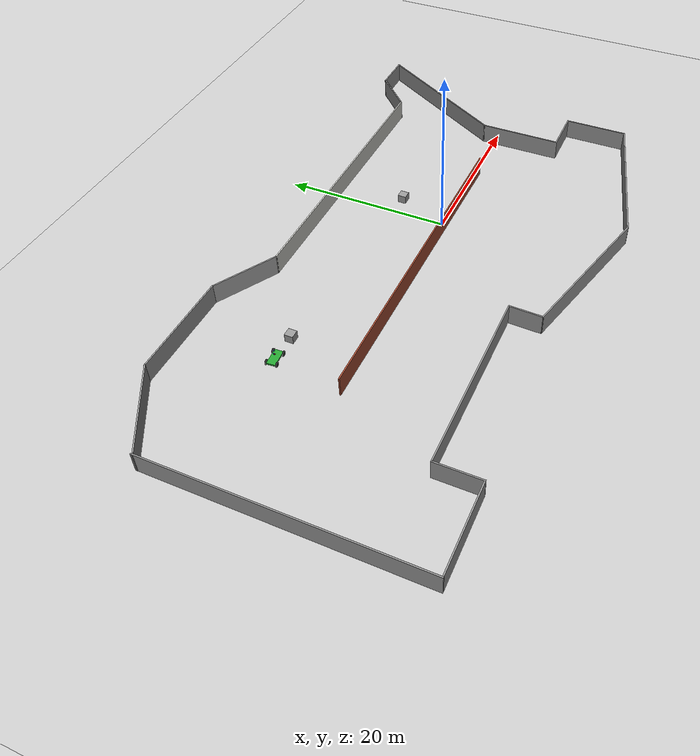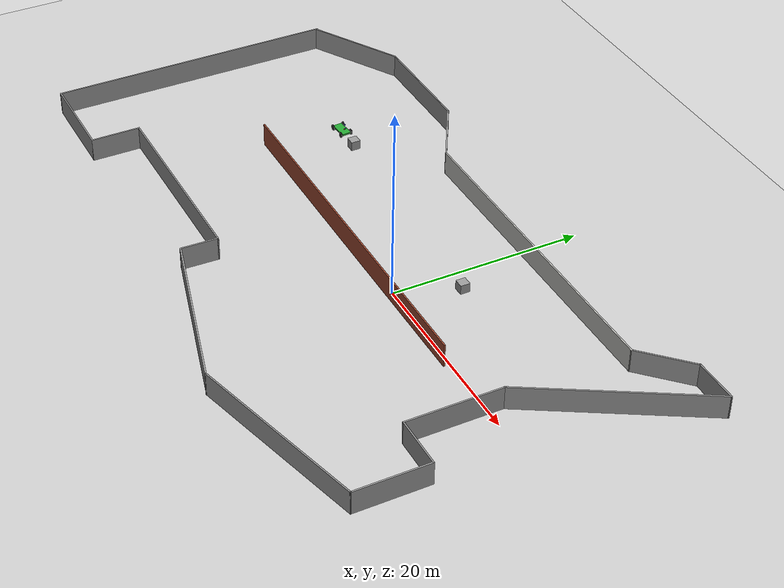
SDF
<sdf version="1.7">
 <world name="default">
  <light name="sun" type="directional">
   <pose>0 0 10 0 -0 0</pose>
   <diffuse>0.8 0.8 0.8 1</diffuse>
   <specular>0.2 0.2 0.2 1</specular>
   <attenuation>
    <range>1000</range>
    <constant>0.9</constant>
    <linear>0.01</linear>
    <quadratic>0.001</quadratic>
   </attenuation>
   <direction>-0.5 0.1 -0.9</direction>
   <spot><inner_angle>0</inner_angle><outer_angle>0</outer_angle><falloff>0</falloff></spot>
  </light>
  <model name="ground_plane">
   <static>1</static>
   <link name="link">
    <collision name="collision">
     <geometry><plane><normal>0 0 1</normal><size>100 100</size></plane></geometry>
     <surface><friction><ode><mu>100</mu><mu2>50</mu2></ode></friction></surface>
    </collision>
    <visual name="visual">
     <cast_shadows>0</cast_shadows>
     <geometry><plane><normal>0 0 1</normal><size>100 100</size></plane></geometry>
     <material>
      <script><uri>file://media/materials/scripts/gazebo.material</uri><name>Gazebo/Grey</name></script>
     </material>
    </visual>
   </link>
  </model>
  <gravity>0 0 -9.8</gravity>
  <magnetic_field>6e-06 2.3e-05 -4.2e-05</magnetic_field>
  <atmosphere type="adiabatic"/>
  <physics type="ode">
   <max_step_size>0.001</max_step_size>
   <real_time_factor>1</real_time_factor>
   <real_time_update_rate>1000</real_time_update_rate>
  </physics>
  <scene><ambient>0.4 0.4 0.4 1</ambient><background>0.7 0.7 0.7 1</background><shadows>1</shadows></scene>
  <audio><device>default</device></audio>
  <spherical_coordinates>
   <surface_model>EARTH_WGS84</surface_model>
   <latitude_deg>0</latitude_deg>
   <longitude_deg>0</longitude_deg>
   <elevation>0</elevation>
   <heading_deg>0</heading_deg>
  </spherical_coordinates>
  <model name="odofGM">
   <pose>-7.54694 -1.38777 0 0 -0 0</pose>
   <link name="Wall_0">
    <collision name="Wall_0_Collision">
     <geometry><box><size>0.3 0.15 2.5</size></box></geometry>
     <pose>0 0 1.25 0 -0 0</pose>
    </collision>
    <visual name="Wall_0_Visual">
     <pose>0 0 1.25 0 -0 0</pose>
     <geometry><box><size>0.3 0.15 2.5</size></box></geometry>
     <material>
      <script><uri>file://media/materials/scripts/gazebo.material</uri><name>Gazebo/Grey</name></script>
      <ambient>1 1 1 1</ambient>
     </material>
     <meta><layer>0</layer></meta>
    </visual>
    <pose>-35.5458 13.9551 0 0 -0 -1.5708</pose>
   </link>
   <link name="Wall_1">
    <collision name="Wall_1_Collision">
     <geometry><box><size>30.25 0.15 2.5</size></box></geometry>
     <pose>0 0 1.25 0 -0 0</pose>
    </collision>
    <visual name="Wall_1_Visual">
     <pose>0 0 1.25 0 -0 0</pose>
     <geometry><box><size>30.25 0.15 2.5</size></box></geometry>
     <material>
      <script><uri>file://media/materials/scripts/gazebo.material</uri><name>Gazebo/Grey</name></script>
      <ambient>1 1 1 1</ambient>
     </material>
     <meta><layer>0</layer></meta>
    </visual>
    <pose>-35.5458 -1.16994 0 0 -0 -1.5708</pose>
   </link>
   <link name="Wall_10">
    <collision name="Wall_10_Collision">
     <geometry><box><size>6.25 0.15 2.5</size></box></geometry>
     <pose>0 0 1.25 0 -0 0</pose>
    </collision>
    <visual name="Wall_10_Visual">
     <pose>0 0 1.25 0 -0 0</pose>
     <geometry><box><size>6.25 0.15 2.5</size></box></geometry>
     <material>
      <script><uri>file://media/materials/scripts/gazebo.material</uri><name>Gazebo/Grey</name></script>
      <ambient>1 1 1 1</ambient>
     </material>
     <meta><layer>0</layer></meta>
    </visual>
    <pose>28.7891 17.4117 0 0 -0 0.785398</pose>
   </link>
   <link name="Wall_11">
    <collision name="Wall_11_Collision">
     <geometry><box><size>4.75 0.15 2.5</size></box></geometry>
     <pose>0 0 1.25 0 -0 0</pose>
    </collision>
    <visual name="Wall_11_Visual">
     <pose>0 0 1.25 0 -0 0</pose>
     <geometry><box><size>4.75 0.15 2.5</size></box></geometry>
     <material>
      <script><uri>file://media/materials/scripts/gazebo.material</uri><name>Gazebo/Grey</name></script>
      <ambient>1 1 1 1</ambient>
     </material>
     <meta><layer>0</layer></meta>
    </visual>
    <pose>33.2458 19.5684 0 0 -0 0</pose>
   </link>
   <link name="Wall_12">
    <collision name="Wall_12_Collision">
     <geometry><box><size>19.5 0.15 2.5</size></box></geometry>
     <pose>0 0 1.25 0 -0 0</pose>
    </collision>
    <visual name="Wall_12_Visual">
     <pose>0 0 1.25 0 -0 0</pose>
     <geometry><box><size>19.5 0.15 2.5</size></box></geometry>
     <material>
      <script><uri>file://media/materials/scripts/gazebo.material</uri><name>Gazebo/Grey</name></script>
      <ambient>1 1 1 1</ambient>
     </material>
     <meta><layer>0</layer></meta>
    </visual>
    <pose>30.7083 11.1896 0 0 -0 -2.0944</pose>
   </link>
   <link name="Wall_13">
    <collision name="Wall_13_Collision">
     <geometry><box><size>10 0.15 2.5</size></box></geometry>
     <pose>0 0 1.25 0 -0 0</pose>
    </collision>
    <visual name="Wall_13_Visual">
     <pose>0 0 1.25 0 -0 0</pose>
     <geometry><box><size>10 0.15 2.5</size></box></geometry>
     <material>
      <script><uri>file://media/materials/scripts/gazebo.material</uri><name>Gazebo/Grey</name></script>
      <ambient>1 1 1 1</ambient>
     </material>
     <meta><layer>0</layer></meta>
    </visual>
    <pose>25.8708 -2.11418 0 0 -0 -1.5708</pose>
   </link>
   <link name="Wall_14">
    <collision name="Wall_14_Collision">
     <geometry><box><size>5.5 0.15 2.5</size></box></geometry>
     <pose>0 0 1.25 0 -0 0</pose>
    </collision>
    <visual name="Wall_14_Visual">
     <pose>0 0 1.25 0 -0 0</pose>
     <geometry><box><size>5.5 0.15 2.5</size></box></geometry>
     <material>
      <script><uri>file://media/materials/scripts/gazebo.material</uri><name>Gazebo/Grey</name></script>
      <ambient>1 1 1 1</ambient>
     </material>
     <meta><layer>0</layer></meta>
    </visual>
    <pose>28.5458 -7.03918 0 0 -0 0</pose>
   </link>
   <link name="Wall_15">
    <collision name="Wall_15_Collision">
     <geometry><box><size>7.75 0.15 2.5</size></box></geometry>
     <pose>0 0 1.25 0 -0 0</pose>
    </collision>
    <visual name="Wall_15_Visual">
     <pose>0 0 1.25 0 -0 0</pose>
     <geometry><box><size>7.75 0.15 2.5</size></box></geometry>
     <material>
      <script><uri>file://media/materials/scripts/gazebo.material</uri><name>Gazebo/Grey</name></script>
      <ambient>1 1 1 1</ambient>
     </material>
     <meta><layer>0</layer></meta>
    </visual>
    <pose>31.2208 -10.8392 0 0 -0 -1.5708</pose>
   </link>
   <link name="Wall_16">
    <collision name="Wall_16_Collision">
     <geometry><box><size>19.25 0.15 2.5</size></box></geometry>
     <pose>0 0 1.25 0 -0 0</pose>
    </collision>
    <visual name="Wall_16_Visual">
     <pose>0 0 1.25 0 -0 0</pose>
     <geometry><box><size>19.25 0.15 2.5</size></box></geometry>
     <material>
      <script><uri>file://media/materials/scripts/gazebo.material</uri><name>Gazebo/Grey</name></script>
      <ambient>1 1 1 1</ambient>
     </material>
     <meta><layer>0</layer></meta>
    </visual>
    <pose>21.9962 -17.1109 0 0 -0 -2.87979</pose>
   </link>
   <link name="Wall_17">
    <collision name="Wall_17_Collision">
     <geometry><box><size>18.25 0.15 2.5</size></box></geometry>
     <pose>0 0 1.25 0 -0 0</pose>
    </collision>
    <visual name="Wall_17_Visual">
     <pose>0 0 1.25 0 -0 0</pose>
     <geometry><box><size>18.25 0.15 2.5</size></box></geometry>
     <material>
      <script><uri>file://media/materials/scripts/gazebo.material</uri><name>Gazebo/Grey</name></script>
      <ambient>1 1 1 1</ambient>
     </material>
     <meta><layer>0</layer></meta>
    </visual>
    <pose>4.02995 -17.2403 0 0 -0 2.87979</pose>
   </link>
   <link name="Wall_18">
    <collision name="Wall_18_Collision">
     <geometry><box><size>3.92984 0.15 2.5</size></box></geometry>
     <pose>0 0 1.25 0 -0 0</pose>
    </collision>
    <visual name="Wall_18_Visual">
     <pose>0 0 1.25 0 -0 0</pose>
     <geometry><box><size>3.92984 0.15 2.5</size></box></geometry>
     <material>
      <script><uri>file://media/materials/scripts/gazebo.material</uri><name>Gazebo/Grey</name></script>
      <ambient>1 1 1 1</ambient>
     </material>
     <meta><layer>0</layer></meta>
    </visual>
    <pose>-4.65372 -13.009 0 0 -0 1.54012</pose>
   </link>
   <link name="Wall_2">
    <collision name="Wall_2_Collision">
     <geometry><box><size>10 0.15 2.5</size></box></geometry>
     <pose>0 0 1.25 0 -0 0</pose>
    </collision>
    <visual name="Wall_2_Visual">
     <pose>0 0 1.25 0 -0 0</pose>
     <geometry><box><size>10 0.15 2.5</size></box></geometry>
     <material>
      <script><uri>file://media/materials/scripts/gazebo.material</uri><name>Gazebo/Grey</name></script>
      <ambient>1 1 1 1</ambient>
     </material>
     <meta><layer>0</layer></meta>
    </visual>
    <pose>-30.6208 -16.2199 0 0 -0 0</pose>
   </link>
   <link name="Wall_20">
    <collision name="Wall_20_Collision">
     <geometry><box><size>39.25 0.15 2.5</size></box></geometry>
     <pose>0 0 1.25 0 -0 0</pose>
    </collision>
    <visual name="Wall_20_Visual">
     <pose>0 0 1.25 0 -0 0</pose>
     <geometry><box><size>39.25 0.15 2.5</size></box></geometry>
     <material>
      <script><uri>file://media/materials/scripts/gazebo.material</uri><name>Gazebo/Bricks</name></script>
      <ambient>1 1 1 1</ambient>
     </material>
     <meta><layer>0</layer></meta>
    </visual>
    <pose>-0.853749 0.798491 0 0 -0 0</pose>
   </link>
   <link name="Wall_3">
    <collision name="Wall_3_Collision">
     <geometry><box><size>5.25 0.15 2.5</size></box></geometry>
     <pose>0 0 1.25 0 -0 0</pose>
    </collision>
    <visual name="Wall_3_Visual">
     <pose>0 0 1.25 0 -0 0</pose>
     <geometry><box><size>5.25 0.15 2.5</size></box></geometry>
     <material>
      <script><uri>file://media/materials/scripts/gazebo.material</uri><name>Gazebo/Grey</name></script>
      <ambient>1 1 1 1</ambient>
     </material>
     <meta><layer>0</layer></meta>
    </visual>
    <pose>-25.6958 -13.6699 0 0 -0 1.5708</pose>
   </link>
   <link name="Wall_4">
    <collision name="Wall_4_Collision">
     <geometry><box><size>21.25 0.15 2.5</size></box></geometry>
     <pose>0 0 1.25 0 -0 0</pose>
    </collision>
    <visual name="Wall_4_Visual">
     <pose>0 0 1.25 0 -0 0</pose>
     <geometry><box><size>21.25 0.15 2.5</size></box></geometry>
     <material>
      <script><uri>file://media/materials/scripts/gazebo.material</uri><name>Gazebo/Grey</name></script>
      <ambient>1 1 1 1</ambient>
     </material>
     <meta><layer>0</layer></meta>
    </visual>
    <pose>-15.1458 -11.1199 0 0 -0 0</pose>
   </link>
   <link name="Wall_6">
    <collision name="Wall_6_Collision">
     <geometry><box><size>10.75 0.15 2.5</size></box></geometry>
     <pose>0 0 1.25 0 -0 0</pose>
    </collision>
    <visual name="Wall_6_Visual">
     <pose>0 0 1.25 0 -0 0</pose>
     <geometry><box><size>10.75 0.15 2.5</size></box></geometry>
     <material>
      <script><uri>file://media/materials/scripts/gazebo.material</uri><name>Gazebo/Grey</name></script>
      <ambient>1 1 1 1</ambient>
     </material>
     <meta><layer>0</layer></meta>
    </visual>
    <pose>-30.9558 16.5301 0 0 -0 0.523599</pose>
   </link>
   <link name="Wall_7">
    <collision name="Wall_7_Collision">
     <geometry><box><size>12.25 0.15 2.5</size></box></geometry>
     <pose>0 0 1.25 0 -0 0</pose>
    </collision>
    <visual name="Wall_7_Visual">
     <pose>0 0 1.25 0 -0 0</pose>
     <geometry><box><size>12.25 0.15 2.5</size></box></geometry>
     <material>
      <script><uri>file://media/materials/scripts/gazebo.material</uri><name>Gazebo/Grey</name></script>
      <ambient>1 1 1 1</ambient>
     </material>
     <meta><layer>0</layer></meta>
    </visual>
    <pose>-20.3159 19.1801 0 0 -0 0</pose>
   </link>
   <link name="Wall_8">
    <collision name="Wall_8_Collision">
     <geometry><box><size>8 0.15 2.5</size></box></geometry>
     <pose>0 0 1.25 0 -0 0</pose>
    </collision>
    <visual name="Wall_8_Visual">
     <pose>0 0 1.25 0 -0 0</pose>
     <geometry><box><size>8 0.15 2.5</size></box></geometry>
     <material>
      <script><uri>file://media/materials/scripts/gazebo.material</uri><name>Gazebo/Grey</name></script>
      <ambient>1 1 1 1</ambient>
     </material>
     <meta><layer>0</layer></meta>
    </visual>
    <pose>-10.8667 17.2176 0 0 -0 -0.523599</pose>
   </link>
   <link name="Wall_9">
    <collision name="Wall_9_Collision">
     <geometry><box><size>34.25 0.15 2.5</size></box></geometry>
     <pose>0 0 1.25 0 -0 0</pose>
    </collision>
    <visual name="Wall_9_Visual">
     <pose>0 0 1.25 0 -0 0</pose>
     <geometry><box><size>34.25 0.15 2.5</size></box></geometry>
     <material>
      <script><uri>file://media/materials/scripts/gazebo.material</uri><name>Gazebo/CeilingTiled</name></script>
      <ambient>1 1 1 1</ambient>
     </material>
     <meta><layer>0</layer></meta>
    </visual>
    <pose>9.58241 15.2551 0 0 -0 0</pose>
   </link>
   <static>1</static>
  </model>
  <model name="car">
   <link name="chassis">
    <pose>0 0 0.3 0 -0 0</pose>
    <collision name="collision"><geometry><box><size>2 1 0.2</size></box></geometry></collision>
    <visual name="visual">
     <geometry><box><size>2 1 0.2</size></box></geometry>
     <material>
      <script><uri>file://media/materials/scripts/gazebo.material</uri><name>Gazebo/Green</name></script>
     </material>
    </visual>
    <inertial>
     <inertia><ixx>1</ixx><ixy>0</ixy><ixz>0</ixz><iyy>1</iyy><iyz>0</iyz><izz>1</izz></inertia>
     <mass>1</mass>
    </inertial>
   </link>
   <link name="front_left_wheel">
    <pose>0.8 0.6 0.3 -0 1.5707 1.5707</pose>
    <collision name="collision">
     <geometry><cylinder><radius>0.3</radius><length>0.1</length></cylinder></geometry>
    </collision>
    <visual name="visual">
     <geometry><cylinder><radius>0.3</radius><length>0.1</length></cylinder></geometry>
     <material>
      <script><uri>file://media/materials/scripts/gazebo.material</uri><name>Gazebo/Black</name></script>
     </material>
    </visual>
    <inertial>
     <inertia><ixx>1</ixx><ixy>0</ixy><ixz>0</ixz><iyy>1</iyy><iyz>0</iyz><izz>1</izz></inertia>
     <mass>1</mass>
    </inertial>
   </link>
   <link name="front_right_wheel">
    <pose>0.8 -0.6 0.3 -0 1.5707 1.5707</pose>
    <collision name="collision">
     <geometry><cylinder><radius>0.3</radius><length>0.1</length></cylinder></geometry>
    </collision>
    <visual name="visual">
     <geometry><cylinder><radius>0.3</radius><length>0.1</length></cylinder></geometry>
     <material>
      <script><uri>file://media/materials/scripts/gazebo.material</uri><name>Gazebo/Black</name></script>
     </material>
    </visual>
    <inertial>
     <inertia><ixx>1</ixx><ixy>0</ixy><ixz>0</ixz><iyy>1</iyy><iyz>0</iyz><izz>1</izz></inertia>
     <mass>1</mass>
    </inertial>
   </link>
   <link name="back_right_wheel">
    <pose>-0.8 -0.6 0.3 -0 1.5707 1.5707</pose>
    <collision name="collision">
     <geometry><cylinder><radius>0.3</radius><length>0.1</length></cylinder></geometry>
    </collision>
    <visual name="visual">
     <geometry><cylinder><radius>0.3</radius><length>0.1</length></cylinder></geometry>
     <material>
      <script><uri>file://media/materials/scripts/gazebo.material</uri><name>Gazebo/Black</name></script>
     </material>
    </visual>
    <inertial>
     <inertia><ixx>1</ixx><ixy>0</ixy><ixz>0</ixz><iyy>1</iyy><iyz>0</iyz><izz>1</izz></inertia>
     <mass>1</mass>
    </inertial>
   </link>
   <link name="back_left_wheel">
    <pose>-0.8 0.6 0.3 -0 1.5707 1.5707</pose>
    <collision name="collision">
     <geometry><cylinder><radius>0.3</radius><length>0.1</length></cylinder></geometry>
    </collision>
    <visual name="visual">
     <geometry><cylinder><radius>0.3</radius><length>0.1</length></cylinder></geometry>
     <material>
      <script><uri>file://media/materials/scripts/gazebo.material</uri><name>Gazebo/Black</name></script>
     </material>
    </visual>
    <inertial>
     <inertia><ixx>1</ixx><ixy>0</ixy><ixz>0</ixz><iyy>1</iyy><iyz>0</iyz><izz>1</izz></inertia>
     <mass>1</mass>
    </inertial>
   </link>
   <link name="gas_pedal">
    <pose>0.3 0.1 0.5 0 -0 0</pose>
    <collision name="collision"><geometry><box><size>0.1 0.1 0.1</size></box></geometry></collision>
    <visual name="visual">
     <geometry><box><size>0.1 0.1 0.1</size></box></geometry>
     <material>
      <script><uri>file://media/materials/scripts/gazebo.material</uri><name>Gazebo/Red</name></script>
     </material>
    </visual>
    <inertial>
     <inertia><ixx>1</ixx><ixy>0</ixy><ixz>0</ixz><iyy>1</iyy><iyz>0</iyz><izz>1</izz></inertia>
     <mass>1</mass>
    </inertial>
   </link>
   <link name="brake_pedal">
    <pose>0.3 0.25 0.5 0 -0 0</pose>
    <collision name="collision"><geometry><box><size>0.1 0.1 0.1</size></box></geometry></collision>
    <visual name="visual">
     <geometry><box><size>0.1 0.1 0.1</size></box></geometry>
     <material>
      <script><uri>file://media/materials/scripts/gazebo.material</uri><name>Gazebo/Blue</name></script>
     </material>
    </visual>
    <inertial>
     <inertia><ixx>1</ixx><ixy>0</ixy><ixz>0</ixz><iyy>1</iyy><iyz>0</iyz><izz>1</izz></inertia>
     <mass>1</mass>
    </inertial>
   </link>
   <link name="steering_wheel">
    <pose>0.3 0.2 1 0 1.5707 0</pose>
    <collision name="collision">
     <geometry><cylinder><radius>0.1</radius><length>0.01</length></cylinder></geometry>
    </collision>
    <visual name="visual">
     <geometry><cylinder><radius>0.1</radius><length>0.01</length></cylinder></geometry>
     <material>
      <script><uri>file://media/materials/scripts/gazebo.material</uri><name>Gazebo/Blue</name></script>
     </material>
    </visual>
    <inertial>
     <inertia><ixx>1</ixx><ixy>0</ixy><ixz>0</ixz><iyy>1</iyy><iyz>0</iyz><izz>1</izz></inertia>
     <mass>1</mass>
    </inertial>
   </link>
   <joint name="gas_joint" type="prismatic">
    <parent>chassis</parent>
    <child>gas_pedal</child>
    <axis>
     <xyz expressed_in="__model__">1 0 0</xyz>
     <limit><lower>0</lower><upper>0.2</upper></limit>
     <dynamics><spring_reference>0</spring_reference><spring_stiffness>0</spring_stiffness></dynamics>
    </axis>
   </joint>
   <joint name="brake_joint" type="prismatic">
    <parent>chassis</parent>
    <child>brake_pedal</child>
    <axis>
     <xyz expressed_in="__model__">1 0 0</xyz>
     <limit><lower>0</lower><upper>0.2</upper></limit>
     <dynamics><spring_reference>0</spring_reference><spring_stiffness>0</spring_stiffness></dynamics>
    </axis>
   </joint>
   <joint name="steering_joint" type="revolute">
    <parent>chassis</parent>
    <child>steering_wheel</child>
    <axis>
     <xyz expressed_in="__model__">1 0 0</xyz>
     <limit><lower>-7.853</lower><upper>7.853</upper></limit>
     <dynamics><spring_reference>0</spring_reference><spring_stiffness>0</spring_stiffness></dynamics>
    </axis>
   </joint>
   <joint name="front_left_joint" type="revolute2">
    <parent>chassis</parent>
    <child>front_left_wheel</child>
    <axis>
     <xyz expressed_in="__model__">0 0 1</xyz>
     <limit><lower>2.66981e-07</lower><upper>2.66981e-07</upper></limit>
     <dynamics><spring_reference>0</spring_reference><spring_stiffness>0</spring_stiffness></dynamics>
    </axis>
    <axis2>
     <xyz expressed_in="__model__">0 1 0</xyz>
     <limit><upper>1e+16</upper><lower>-1e+16</lower></limit>
     <dynamics><spring_reference>0</spring_reference><spring_stiffness>0</spring_stiffness></dynamics>
    </axis2>
    <physics><ode><limit><cfm>0</cfm><erp>0.9</erp></limit></ode></physics>
   </joint>
   <joint name="front_right_joint" type="revolute2">
    <parent>chassis</parent>
    <child>front_right_wheel</child>
    <axis>
     <xyz expressed_in="__model__">0 0 1</xyz>
     <limit><lower>2.66981e-07</lower><upper>2.66981e-07</upper></limit>
     <dynamics><spring_reference>0</spring_reference><spring_stiffness>0</spring_stiffness></dynamics>
    </axis>
    <axis2>
     <xyz expressed_in="__model__">0 1 0</xyz>
     <limit><upper>1e+16</upper><lower>-1e+16</lower></limit>
     <dynamics><spring_reference>0</spring_reference><spring_stiffness>0</spring_stiffness></dynamics>
    </axis2>
    <physics><ode><limit><cfm>0</cfm><erp>0.9</erp></limit></ode></physics>
   </joint>
   <joint name="back_right_joint" type="revolute2">
    <parent>chassis</parent>
    <child>back_right_wheel</child>
    <axis>
     <xyz expressed_in="__model__">0 0 1</xyz>
     <limit><lower>0</lower><upper>0</upper></limit>
     <dynamics><spring_reference>0</spring_reference><spring_stiffness>0</spring_stiffness></dynamics>
    </axis>
    <axis2>
     <xyz expressed_in="__model__">0 1 0</xyz>
     <limit><upper>1e+16</upper><lower>-1e+16</lower></limit>
     <dynamics><spring_reference>0</spring_reference><spring_stiffness>0</spring_stiffness></dynamics>
    </axis2>
    <physics><ode><limit><cfm>0</cfm><erp>0.9</erp></limit></ode></physics>
   </joint>
   <joint name="back_left_joint" type="revolute2">
    <parent>chassis</parent>
    <child>back_left_wheel</child>
    <axis>
     <xyz expressed_in="__model__">0 0 1</xyz>
     <limit><lower>0</lower><upper>0</upper></limit>
     <dynamics><spring_reference>0</spring_reference><spring_stiffness>0</spring_stiffness></dynamics>
    </axis>
    <axis2>
     <xyz expressed_in="__model__">0 1 0</xyz>
     <limit><upper>1e+16</upper><lower>-1e+16</lower></limit>
     <dynamics><spring_reference>0</spring_reference><spring_stiffness>0</spring_stiffness></dynamics>
    </axis2>
    <physics><ode><limit><cfm>0</cfm><erp>0.9</erp></limit></ode></physics>
   </joint>
   <plugin name="vehicle" filename="libVehiclePlugin.so">
    <front_left>front_left_joint</front_left>
    <front_right>front_right_joint</front_right>
    <back_left>back_left_joint</back_left>
    <back_right>back_right_joint</back_right>
    <gas>gas_joint</gas>
    <brake>brake_joint</brake>
    <steering>steering_joint</steering>
    <front_power>10</front_power>
    <rear_power>10</rear_power>
    <tire_angle_range>0.5</tire_angle_range>
    <max_speed>10</max_speed>
    <aero_load>0.1</aero_load>
   </plugin>
   <pose>-26.4918 7.6457 9e-06 -6e-06 1e-06 0.07288</pose>
  </model>
  <model name="unit_box_0">
   <pose>-23.3617 7.50943 0.499995 -1e-05 -0 -0</pose>
   <link name="link">
    <inertial>
     <mass>1</mass>
     <inertia>
      <ixx>0.166667</ixx>
      <ixy>0</ixy>
      <ixz>0</ixz>
      <iyy>0.166667</iyy>
      <iyz>0</iyz>
      <izz>0.166667</izz>
     </inertia>
    </inertial>
    <collision name="collision"><geometry><box><size>1 1 1</size></box></geometry></collision>
    <visual name="visual">
     <geometry><box><size>1 1 1</size></box></geometry>
     <material>
      <script><name>Gazebo/Grey</name><uri>file://media/materials/scripts/gazebo.material</uri></script>
     </material>
    </visual>
   </link>
  </model>
  <model name="unit_box">
   <pose>2.4771 6.15702 0.499995 0 1e-05 2e-06</pose>
   <link name="link">
    <inertial>
     <mass>1</mass>
     <inertia>
      <ixx>0.166667</ixx>
      <ixy>0</ixy>
      <ixz>0</ixz>
      <iyy>0.166667</iyy>
      <iyz>0</iyz>
      <izz>0.166667</izz>
     </inertia>
    </inertial>
    <collision name="collision"><geometry><box><size>1 1 1</size></box></geometry></collision>
    <visual name="visual">
     <geometry><box><size>1 1 1</size></box></geometry>
     <material>
      <script><name>Gazebo/Grey</name><uri>file://media/materials/scripts/gazebo.material</uri></script>
     </material>
    </visual>
   </link>
  </model>
 </world>
</sdf>
